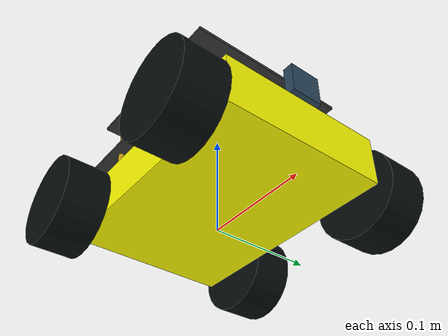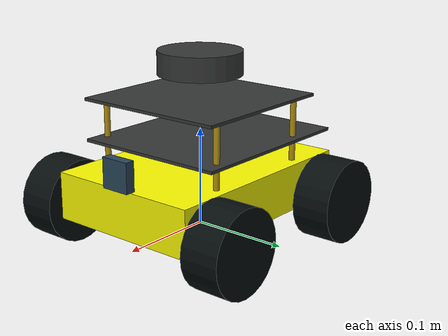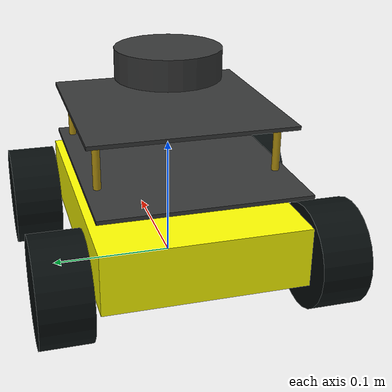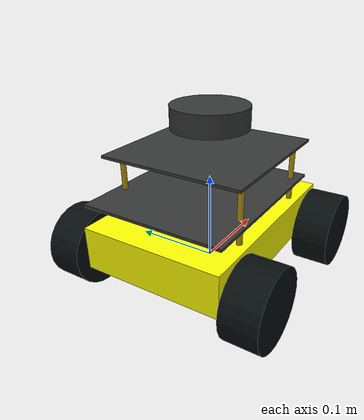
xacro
<?xml version="1.0"?>
<robot xmlns:xacro="http://www.ros.org/wiki/xacro"  name="robot">

    <xacro:include filename="robot_core.xacro"/>
    <xacro:include filename="gazebo_control.xacro"/>
    <xacro:include filename="imu.xacro"/>
    <xacro:include filename="lidar.xacro"/>
    <xacro:include filename="camera.xacro"/>

</robot>

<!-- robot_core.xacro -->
<robot xmlns:xacro="http://www.ros.org/wiki/xacro">

    <xacro:include filename="inertial_macros.xacro"/>
    <xacro:include filename="wheels.xacro"/>
    <xacro:include filename="acrylic_base.xacro"/>
    <xacro:include filename="standoff.xacro"/>

    <link name="base_link"/>

    <!--base_footprint -->

    <joint name="base_footprint_joint" type="fixed">
        <parent link="base_footprint"/>
        <child link="base_link"/>
        <origin xyz="0 0 0" rpy="0 0 0"/>
    </joint>

    <link name="base_footprint">
    </link>

    <xacro:property name="base_mass"        value="1.0"/>
    <xacro:property name="base_length"      value="0.23"/>
    <xacro:property name="base_height"      value="0.048"/>
    <xacro:property name="base_width"       value="0.16"/>

    <xacro:property name="wheel_mass"       value="0.06"/>
    <xacro:property name="wheel_radius"     value="0.0425"/>
    <xacro:property name="wheel_thickness"  value="0.04"/>

    <xacro:property name="acrylic_thickness"  value="0.003"/>
    <xacro:property name="acrylic_width"  value="0.16"/>

    <!--Main chassis -->

    <link name="chassis">
        <visual name="">
            <origin xyz="0 0 0"/>
            <geometry>
                <box size="${base_length} ${base_width} ${base_height}"/>
            </geometry>
            <material name="">
                <color rgba="1.0 1.0 0.0 1.0"/>
            </material>
        </visual>

        <collision>
            <origin xyz="0 0 0"/>
            <geometry>
                <box size="${base_length} ${base_width} ${base_height}"/>
            </geometry>
        </collision>

        <xacro:inertial_box mass="${base_mass}" x="${base_length}" y="${base_width}" z="${base_height}">
            <origin xyz="0 0 0" rpy="0 0 0"/>
        </xacro:inertial_box>
    </link>

    <gazebo reference = "chassis">
        <material>Gazebo/Yellow</material>
    </gazebo>

    <joint name="chassis_joint" type="fixed">
        <parent link="base_link"/>
        <child link="chassis"/>
        <origin xyz="0.0 0.0 0.0425"/>
    </joint>

    <!-- Wheels -->

    <xacro:wheel name="front_left"  x="0.085" y =" 0.105" wheel_mass="${wheel_mass}" wheel_radius="${wheel_radius}" wheel_thickness="${wheel_thickness}"/>
    <xacro:wheel name="rear_left" x="-0.085" y =" 0.105" wheel_mass="${wheel_mass}" wheel_radius="${wheel_radius}" wheel_thickness="${wheel_thickness}"/>
    <xacro:wheel name="rear_right"  x="-0.085" y =" -0.105" wheel_mass="${wheel_mass}" wheel_radius="${wheel_radius}" wheel_thickness="${wheel_thickness}"/>
    <xacro:wheel name="front_right"   x="0.085" y =" -0.105" wheel_mass="${wheel_mass}" wheel_radius="${wheel_radius}" wheel_thickness="${wheel_thickness}"/>

    <!-- Acrylic base -->

    <xacro:acrylic_base parent="chassis" child="jetson_base" sheet_mass="0.02" sheet_length="0.190" sheet_width="${acrylic_width}" sheet_thickness="${acrylic_thickness}" xyz="-0.016 0 0.048"  />
    <xacro:acrylic_base parent="chassis" child="lidar_base" sheet_mass="0.01" sheet_length="0.160" sheet_width="${acrylic_width}" sheet_thickness="${acrylic_thickness}" xyz="0 0 0.090" />

    <!-- Standoffs -->

    <xacro:robot_pillar parent="chassis" child="chassis_pillar1" standoff_mass="0.002" standoff_length="0.022" standoff_radius="0.003" xyz="0.06  0.07 0.036" />
    <xacro:robot_pillar parent="chassis" child="chassis_pillar2" standoff_mass="0.002" standoff_length="0.022" standoff_radius="0.003" xyz="0.06  -0.07 0.036" />
    <xacro:robot_pillar parent="chassis" child="chassis_pillar3" standoff_mass="0.002" standoff_length="0.022" standoff_radius="0.003" xyz="-0.06 0.07 0.036" />
    <xacro:robot_pillar parent="chassis" child="chassis_pillar4" standoff_mass="0.002" standoff_length="0.022" standoff_radius="0.003" xyz="-0.06 -0.07 0.036" />

    <xacro:robot_pillar parent="chassis" child="jetson_base_pillar1" standoff_mass="0.003" standoff_length="0.04" standoff_radius="0.003" xyz="0.06  0.07  0.07" />
    <xacro:robot_pillar parent="chassis" child="jetson_base_pillar2" standoff_mass="0.003" standoff_length="0.04" standoff_radius="0.003" xyz="0.06  -0.07 0.07" />
    <xacro:robot_pillar parent="chassis" child="jetson_base_pillar3" standoff_mass="0.003" standoff_length="0.04" standoff_radius="0.003" xyz="-0.06 0.07  0.07" />
    <xacro:robot_pillar parent="chassis" child="jetson_base_pillar4" standoff_mass="0.003" standoff_length="0.04" standoff_radius="0.003" xyz="-0.06 -0.07 0.07" />

</robot>

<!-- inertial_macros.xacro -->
<robot xmlns:xacro="http://www.ros.org/wiki/xacro" >

    <!-- Specify some standard inertial calculations https://en.wikipedia.org/wiki/List_of_moments_of_inertia -->
    <!-- These make use of xacro's mathematical functionality -->

    <xacro:macro name="inertial_sphere" params="mass radius *origin">
        <inertial>
            <xacro:insert_block name="origin"/>
            <mass value="${mass}" />
            <inertia ixx="${(2/5) * mass * (radius*radius)}" ixy="0.0" ixz="0.0"
                    iyy="${(2/5) * mass * (radius*radius)}" iyz="0.0"
                    izz="${(2/5) * mass * (radius*radius)}" />
        </inertial>
    </xacro:macro>

    <xacro:macro name="inertial_box" params="mass x y z *origin">
        <inertial>
            <xacro:insert_block name="origin"/>
            <mass value="${mass}" />
            <inertia ixx="${(1/12) * mass * (y*y+z*z)}" ixy="0.0" ixz="0.0"
                    iyy="${(1/12) * mass * (x*x+z*z)}" iyz="0.0"
                    izz="${(1/12) * mass * (x*x+y*y)}" />
        </inertial>
    </xacro:macro>

    <xacro:macro name="inertial_cylinder" params="mass length radius *origin">
        <inertial>
            <xacro:insert_block name="origin"/>
            <mass value="${mass}" />
            <inertia ixx="${(1/12) * mass * (3*radius*radius + length*length)}" ixy="0.0" ixz="0.0"
                    iyy="${(1/12) * mass * (3*radius*radius + length*length)}" iyz="0.0"
                    izz="${(1/2) * mass * (radius*radius)}" />
        </inertial>
    </xacro:macro>

</robot>

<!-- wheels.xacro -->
<robot xmlns:xacro="http://www.ros.org/wiki/xacro"  name="robot">

    <xacro:include filename="inertial_macros.xacro"/>

    <xacro:macro name="wheel" params="name x y wheel_mass wheel_radius wheel_thickness">

        <link name="${name}_wheel_link">

            <visual name="">
                <origin xyz="0.0 0.0 0.0" rpy="0.0 0.0 0.0"/>
                <geometry>
                    <cylinder radius="${wheel_radius}" length="${wheel_thickness}"/>
                </geometry>
                <material name="almostblack" >
                    <color rgba="0.027450980392156862 0.050980392156862744 0.050980392156862744 1.0" />
                </material>
            </visual>

            <collision>
                    <origin xyz="0.0 0.0 0.0" rpy="0.0 0.0 0.0"/>
                    <geometry>
                        <sphere radius="${wheel_radius}"/>
                    </geometry>
            </collision>

            <xacro:inertial_cylinder mass="${wheel_mass}" length="${wheel_thickness}" radius="${wheel_radius}">
                <origin xyz="0 0 0" rpy="0 0 0"/>
            </xacro:inertial_cylinder>
        </link>

        <gazebo reference = "${name}_wheel_link">
            <material>Gazebo/Black</material>
        </gazebo>

        <joint name="${name}_wheel_joint" type="continuous">
            <parent link="chassis"/>
            <child link="${name}_wheel_link"/>
            <origin xyz="${x} ${y} -0.015" rpy="-1.57 0.0 0.0"/>
            <axis xyz=".0 .0 1.0"/>
        </joint>

    </xacro:macro>

</robot>

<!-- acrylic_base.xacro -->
<robot xmlns:xacro="http://www.ros.org/wiki/xacro"  name="robot">

    <xacro:include filename="inertial_macros.xacro"/>

    <xacro:macro name="acrylic_base" params="parent child sheet_mass sheet_length sheet_width sheet_thickness xyz">

        <link name="${child}">
            <visual>
                <geometry>
                    <box size="${sheet_length} ${sheet_width} ${sheet_thickness}"/>
                </geometry>
                <material name="darkgrey" >
                    <color rgba="0.21176470588235294 0.21568627450980393 0.21568627450980393 1.0" />
                </material>
            </visual>

            <collision>
                <geometry>
                    <box size="${sheet_length} ${sheet_width} ${sheet_thickness}"/>
                </geometry>
            </collision>

            <xacro:inertial_box mass="${sheet_mass}" x="${sheet_length}" y="${sheet_width}" z="${sheet_thickness}">
                <origin xyz="${sheet_length/2} 0 ${sheet_thickness/2}" rpy="0 0 0"/>
            </xacro:inertial_box>
        </link>

        <joint name="${parent}_to_${child}_joint" type="fixed">
            <origin xyz="${xyz}" rpy="0 0 0" />
            <parent link="${parent}" />
            <child link="${child}" />
        </joint>

        <gazebo reference = "${child}">
            <material>Gazebo/FlatBlack</material>
        </gazebo>

    </xacro:macro>

</robot>

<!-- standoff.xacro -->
<robot xmlns:xacro="http://wiki.ros.org/xacro">

    <xacro:macro name="robot_pillar" params="parent child standoff_mass standoff_length standoff_radius xyz">

        <link name="${child}">
            <visual>
                <geometry>
                    <cylinder radius="${standoff_radius}" length="${standoff_length}"/>
                </geometry>
                <material name="darkgold" >
                    <color rgba="0.7098039215686275 0.5803921568627451 0.06274509803921569 1.0" />
                </material>
            </visual>

            <collision>
                <geometry>
                    <cylinder radius="${standoff_radius}" length="${standoff_length}"/>
                </geometry>
            </collision>

            <xacro:inertial_cylinder mass="${standoff_mass}" length="${standoff_length}" radius="${standoff_radius}">
                <origin xyz="0 0 0" rpy="0 0 0"/>
            </xacro:inertial_cylinder>
        </link>

        <joint name="${parent}_to_${child}_joint" type="fixed">
            <origin xyz="${xyz}" rpy="0 0 0"/>
            <parent link="${parent}"/>
            <child link="${child}"/>
        </joint>

        <gazebo reference = "${child}">
            <material>Gazebo/Gold</material>
        </gazebo>

    </xacro:macro>
</robot>

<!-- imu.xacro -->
<robot xmlns:xacro="http://www.ros.org/wiki/xacro">

    <link name="imu_link"/>

    <joint name="imu_to_base_link" type="fixed">
        <parent link="base_link"/>
        <child link="imu_link"/>
        <origin xyz="0 0 0" rpy="0 0 0"/>
    </joint>

    <gazebo reference="imu_link">
        <gravity>true</gravity>
        <sensor name="imu_sensor" type="imu">
            <always_on>true</always_on>
            <update_rate>20</update_rate>
            <visualize>true</visualize>
            <topic>__default_topic__</topic>
            <plugin filename="libgazebo_ros_imu_sensor.so" name="imu_plugin">
                <ros>
                    <remapping>~/out:=imu/data</remapping>
                </ros>
                <topicName>imu/data</topicName>
                <bodyName>imu_link</bodyName>
                <updateRateHZ>10.0</updateRateHZ>
                <gaussianNoise>0.0</gaussianNoise>
                <xyzOffset>0 0 0</xyzOffset>
                <rpyOffset>0 0 0</rpyOffset>
                <frameName>imu_link</frameName>
                <initialOrientationAsReference>false</initialOrientationAsReference>
            </plugin>
            <pose>0 0 0 0 0 0</pose>
        </sensor>
    </gazebo>

</robot>

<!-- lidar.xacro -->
<robot xmlns:xacro="http://www.ros.org/wiki/xacro">

    <xacro:property name="lidar_mass"       value="0.010"/>
    <xacro:property name="lidar_radius"     value="0.0425"/>
    <xacro:property name="lidar_height"     value="0.024"/>

    <joint name="laser_joint" type="fixed">
        <parent link="lidar_base"/>
        <child link="laser"/>
        <origin xyz="-0.00 0.0 0.035" rpy="0.0 0.0 0.0"/>
    </joint>

    <link name="laser">

        <visual>
            <geometry>
                <cylinder radius="${lidar_radius}" length="${lidar_height}" />
            </geometry>
            <material name="darkgrey" >
                <color rgba="0.21176470588235294 0.21568627450980393 0.21568627450980393 1.0" />
            </material>
        </visual>

        <collision>
            <geometry>
                <cylinder radius="${lidar_radius}" length="${lidar_height}" />
            </geometry>
        </collision>

        <xacro:inertial_cylinder mass="${lidar_mass}" length="${lidar_height}" radius="${lidar_radius}">
            <origin xyz="0 0 0" rpy="0 0 0"/>
        </xacro:inertial_cylinder>

    </link>

</robot>

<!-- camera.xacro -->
<robot xmlns:xacro="http://www.ros.org/wiki/xacro">

    <link name="camera_link">
        <visual>
            <geometry>
                <box size="0.010 0.03 0.03"/>
            </geometry>
            <material name="darkgreyblue" >
                <color rgba="0.1607843137254902 0.27450980392156865 0.3568627450980392 1.0" />
            </material>
        </visual>
    </link>

    <joint name="camera_joint" type="fixed">
        <parent link="chassis"/>
        <child link="camera_link"/>
        <origin xyz="${base_length/2} 0 ${(base_height/2) + 0.015}" rpy="0 0 0"/>
    </joint>

    <joint name="camera_optical_joint" type="fixed">
        <parent link="camera_link"/>
        <child link="camera_link_optical"/>
        <origin xyz="0.0 0.0 0.0" rpy="${-pi/2} 0.0 ${-pi/2}"/>
    </joint>

    <link name="camera_link_optical"> </link>

    <gazebo reference="camera_link">
        <material>Gazebo/DarkGrey</material>
        <sensor name="camera" type="camera">
            <pose> 0 0 0 0 0 0 </pose>
            <visualize>false</visualize>
            <update_rate>10</update_rate>
            <camera>
                <horizontal_fov>1.089</horizontal_fov>
                <image>
                    <format>R8G8B8</format>
                    <width>640</width>
                    <height>480</height>
                </image>
                <clip>
                    <near>0.05</near>
                    <far>8.0</far>
                </clip>
            </camera>
            <plugin name="camera_controller" filename="libgazebo_ros_camera.so">
                <frame_name>camera_link_optical</frame_name>
            </plugin>
        </sensor>
    </gazebo>

</robot>
